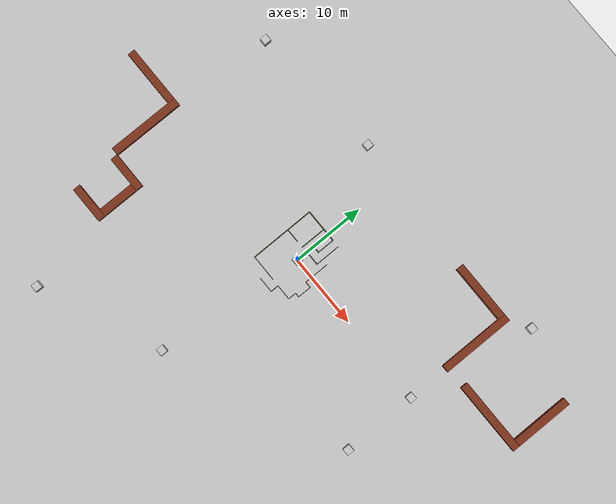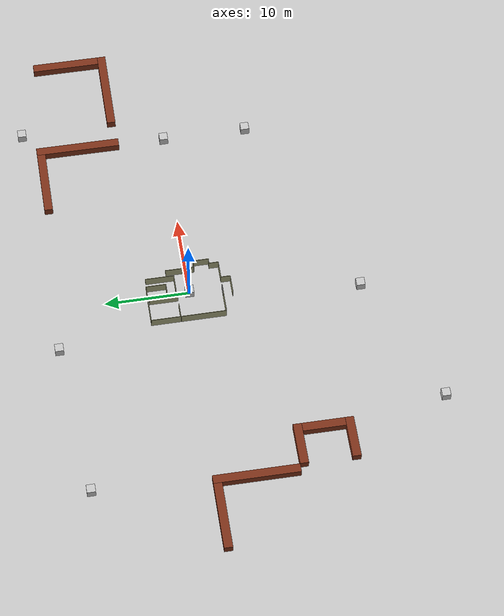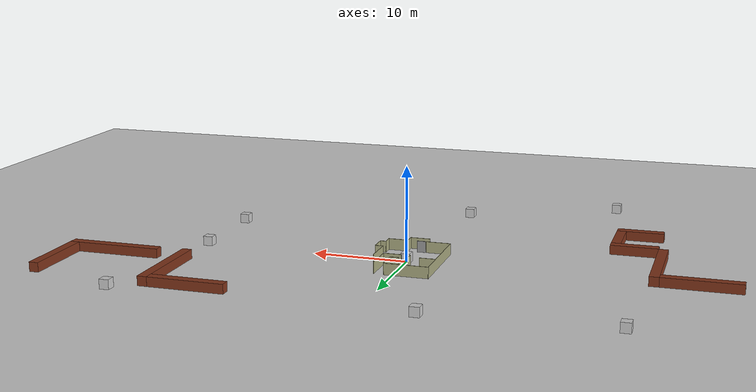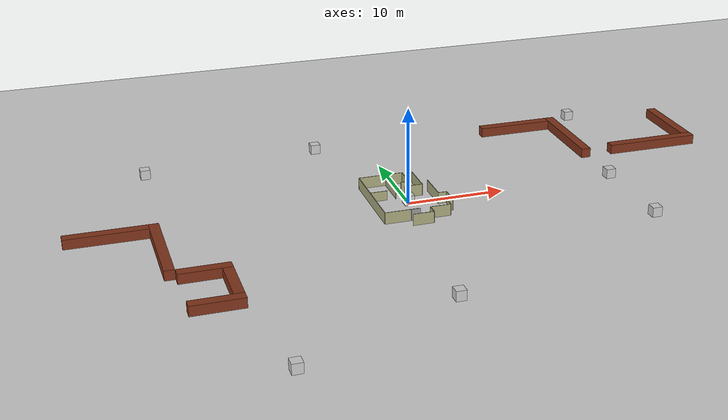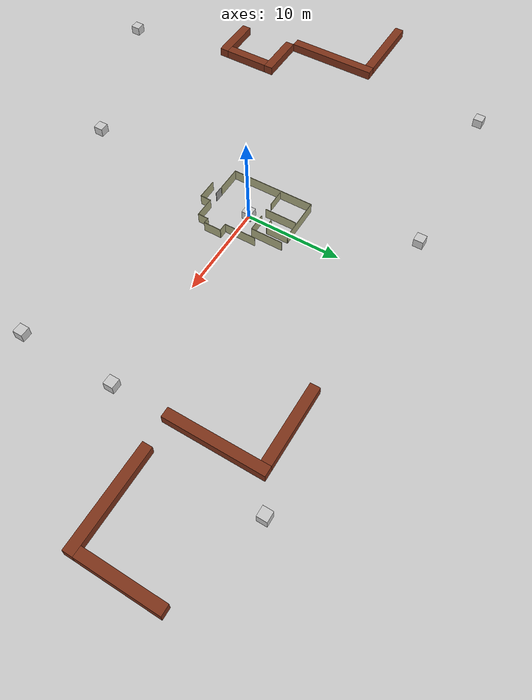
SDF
<?xml version="1.0" encoding="UTF-8"?>
<sdf version="1.4">
  <world name="default">
    <!-- *********************INITIAL POSE OF THE CAMERA***************************** -->
		<gui>
      <camera name="main_cam">
        <pose>1.15 -71.8 70 0 0.8 1.57</pose>
      </camera>
    </gui>

    <!-- *********************GROUND AND SUN***************************** -->
    <include>
      <uri>model://ground_plane</uri>
    </include>

    <include>
      <uri>model://sun</uri>
    </include>

    <!-- **********************WALLS**************************** -->
    <include>
      <uri>model://walls</uri>
      <name>limits</name>
      <pose>0 0 0 0 0 0</pose>
    </include>

    <!-- **********************PLATFORM**************************** -->
    <include>
      <uri>model://platform</uri>
      <name>platform</name>
      <pose>28 12 0 0 0 0</pose>
    </include>

    <!-- **********************L AND U OBSTACLES**************************** -->
    <include>
      <uri>model://L_box</uri>
      <name>obs_1</name>
      <pose>-25 -4 0 0 0 3.14</pose>
    </include>

    <include>
      <uri>model://U_box</uri>
      <name>obs_2</name>
      <pose>-22 -15.5 0 0 0 1.57</pose>
    </include>

    <include>
      <uri>model://L_box</uri>
      <name>obs_3</name>
      <pose>22 10.5 0 0 0 3.14</pose>
    </include>

    <include>
      <uri>model://L_box</uri>
      <name>obs_4</name>
      <pose>30 6 0 0 0 1.57</pose>
    </include>

    <!-- **********************BASIC OBSTACLES**************************** -->
    <include>
      <uri>model://basic_box</uri>
      <name>obs_5</name>
      <pose>-24 14.6 0 0 0 1.57</pose>
    </include>

    <include>
      <uri>model://basic_box</uri>
      <name>obs_6</name>
      <pose>-18 -27 0 0 0 1.57</pose>
    </include>

    <include>
      <uri>model://basic_box</uri>
      <name>obs_7</name>
      <pose>-5.5 16 0 0 0 1.57</pose>
    </include>

    <include>
      <uri>model://basic_box</uri>
      <name>obs_8</name>
      <pose>-2 -20 0 0 0 1.57</pose>
    </include>

    <include>
      <uri>model://basic_box</uri>
      <name>obs_9</name>
      <pose>0 0 0 0 0 1.57</pose>
    </include>

    <include>
      <uri>model://basic_box</uri>
      <name>obs_10</name>
      <pose>22 -10 0 0 0 1.57</pose>
    </include>

    <include>
      <uri>model://basic_box</uri>
      <name>obs_11</name>
      <pose>22 0 0 0 0 1.57</pose>
    </include>

    <include>
      <uri>model://basic_box</uri>
      <name>obs_12</name>
      <pose>25 17 0 0 0 1.57</pose>
    </include>
  </world>
</sdf>

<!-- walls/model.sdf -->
<sdf version='1.6'>
  <model name='walls'>
    <pose frame=''>0.070483 0.106017 0 0 -0 0</pose>
    <link name='Door_4'>
      <collision name='Door_4_Collision'>
        <geometry>
          <box>
            <size>0.906 0.05 1.2</size>
          </box>
        </geometry>
        <pose frame=''>0 0 0.6 0 -0 0</pose>
      </collision>
      <visual name='Door_4_Visual'>
        <pose frame=''>0 0 0.6 0 -0 0</pose>
        <geometry>
          <box>
            <size>0.906 0.05 1.2</size>
          </box>
        </geometry>
        <material>
          <script>
            <uri>file://media/materials/scripts/gazebo.material</uri>
            <name>Gazebo/Grey</name>
          </script>
        </material>
      </visual>
      <pose frame=''>-0.514741 -3.87011 0 0 0 -0.000969</pose>
    </link>
    <link name='Wall_19'>
      <collision name='Wall_19_Collision'>
        <geometry>
          <box>
            <size>1.9 0.05 1</size>
          </box>
        </geometry>
        <pose frame=''>0 0 0.5 0 -0 0</pose>
      </collision>
      <visual name='Wall_19_Visual'>
        <pose frame=''>0 0 0.5 0 -0 0</pose>
        <geometry>
          <box>
            <size>1.9 0.05 1</size>
          </box>
        </geometry>
        <material>
          <script>
            <uri>file://media/materials/scripts/gazebo.material</uri>
            <name>Gazebo/Grey</name>
          </script>
          <ambient>0.666667 0.666667 0.498039 1</ambient>
        </material>
      </visual>
      <pose frame=''>-2.73248 1.48798 0 0 -0 0</pose>
    </link>
    <link name='Wall_21'>
      <collision name='Wall_21_Collision'>
        <geometry>
          <box>
            <size>2.15 0.05 1.2</size>
          </box>
        </geometry>
        <pose frame=''>0 0 0.6 0 -0 0</pose>
      </collision>
      <visual name='Wall_21_Visual'>
        <pose frame=''>0 0 0.6 0 -0 0</pose>
        <geometry>
          <box>
            <size>2.15 0.05 1.2</size>
          </box>
        </geometry>
        <material>
          <script>
            <uri>file://media/materials/scripts/gazebo.material</uri>
            <name>Gazebo/Grey</name>
          </script>
          <ambient>0.666667 0.666667 0.498039 1</ambient>
        </material>
      </visual>
      <pose frame=''>-0.092483 -4.98802 0 0 -0 0</pose>
    </link>
    <link name='Wall_22'>
      <collision name='Wall_22_Collision'>
        <geometry>
          <box>
            <size>1.15 0.05 1.2</size>
          </box>
        </geometry>
        <pose frame=''>0 0 0.6 0 -0 0</pose>
      </collision>
      <visual name='Wall_22_Visual'>
        <pose frame=''>0 0 0.6 0 -0 0</pose>
        <geometry>
          <box>
            <size>1.15 0.05 1.2</size>
          </box>
        </geometry>
        <material>
          <script>
            <uri>file://media/materials/scripts/gazebo.material</uri>
            <name>Gazebo/Grey</name>
          </script>
          <ambient>0.666667 0.666667 0.498039 1</ambient>
        </material>
      </visual>
      <pose frame=''>0.957517 -4.43802 0 0 -0 1.5708</pose>
    </link>
    <link name='Wall_23'>
      <collision name='Wall_23_Collision'>
        <geometry>
          <box>
            <size>2.15 0.05 1.2</size>
          </box>
        </geometry>
        <pose frame=''>0 0 0.6 0 -0 0</pose>
      </collision>
      <visual name='Wall_23_Visual'>
        <pose frame=''>0 0 0.6 0 -0 0</pose>
        <geometry>
          <box>
            <size>2.15 0.05 1.2</size>
          </box>
        </geometry>
        <material>
          <script>
            <uri>file://media/materials/scripts/gazebo.material</uri>
            <name>Gazebo/Grey</name>
          </script>
          <ambient>0.666667 0.666667 0.498039 1</ambient>
        </material>
      </visual>
      <pose frame=''>2.00752 -3.88802 0 0 -0 0</pose>
    </link>
    <link name='Wall_24'>
      <collision name='Wall_24_Collision'>
        <geometry>
          <box>
            <size>1.15 0.05 1.2</size>
          </box>
        </geometry>
        <pose frame=''>0 0 0.6 0 -0 0</pose>
      </collision>
      <visual name='Wall_24_Visual'>
        <pose frame=''>0 0 0.6 0 -0 0</pose>
        <geometry>
          <box>
            <size>1.15 0.05 1.2</size>
          </box>
        </geometry>
        <material>
          <script>
            <uri>file://media/materials/scripts/gazebo.material</uri>
            <name>Gazebo/Grey</name>
          </script>
          <ambient>0.666667 0.666667 0.498039 1</ambient>
        </material>
      </visual>
      <pose frame=''>3.05752 -3.33802 0 0 -0 1.5708</pose>
    </link>
    <link name='Wall_25'>
      <collision name='Wall_25_Collision'>
        <geometry>
          <box>
            <size>0.65 0.05 1.2</size>
          </box>
        </geometry>
        <pose frame=''>0 0 0.6 0 -0 0</pose>
      </collision>
      <visual name='Wall_25_Visual'>
        <pose frame=''>0 0 0.6 0 -0 0</pose>
        <geometry>
          <box>
            <size>0.65 0.05 1.2</size>
          </box>
        </geometry>
        <material>
          <script>
            <uri>file://media/materials/scripts/gazebo.material</uri>
            <name>Gazebo/Grey</name>
          </script>
          <ambient>0.666667 0.666667 0.498039 1</ambient>
        </material>
      </visual>
      <pose frame=''>3.35752 -2.78802 0 0 -0 0</pose>
    </link>
    <link name='Wall_26'>
      <collision name='Wall_26_Collision'>
        <geometry>
          <box>
            <size>1.9 0.05 1.2</size>
          </box>
        </geometry>
        <pose frame=''>0 0 0.6 0 -0 0</pose>
      </collision>
      <visual name='Wall_26_Visual'>
        <pose frame=''>0 0 0.6 0 -0 0</pose>
        <geometry>
          <box>
            <size>1.9 0.05 1.2</size>
          </box>
        </geometry>
        <material>
          <script>
            <uri>file://media/materials/scripts/gazebo.material</uri>
            <name>Gazebo/Grey</name>
          </script>
          <ambient>0.666667 0.666667 0.498039 1</ambient>
        </material>
      </visual>
      <pose frame=''>3.65752 -1.86302 0 0 -0 1.5708</pose>
    </link>
    <link name='Wall_27'>
      <collision name='Wall_27_Collision'>
        <geometry>
          <box>
            <size>0.9 0.05 1.2</size>
          </box>
        </geometry>
        <pose frame=''>0 0 0.6 0 -0 0</pose>
      </collision>
      <visual name='Wall_27_Visual'>
        <pose frame=''>0 0 0.6 0 -0 0</pose>
        <geometry>
          <box>
            <size>0.9 0.05 1.2</size>
          </box>
        </geometry>
        <material>
          <script>
            <uri>file://media/materials/scripts/gazebo.material</uri>
            <name>Gazebo/Grey</name>
          </script>
          <ambient>0.666667 0.666667 0.498039 1</ambient>
        </material>
      </visual>
      <pose frame=''>3.23252 -0.938017 0 0 -0 3.14159</pose>
    </link>
    <link name='Wall_36'>
      <collision name='Wall_36_Collision'>
        <geometry>
          <box>
            <size>1.9 0.05 1.2</size>
          </box>
        </geometry>
        <pose frame=''>0 0 0.6 0 -0 0</pose>
      </collision>
      <visual name='Wall_36_Visual'>
        <pose frame=''>0 0 0.6 0 -0 0</pose>
        <geometry>
          <box>
            <size>1.9 0.05 1.2</size>
          </box>
        </geometry>
        <material>
          <script>
            <uri>file://media/materials/scripts/gazebo.material</uri>
            <name>Gazebo/Grey</name>
          </script>
          <ambient>0.666667 0.666667 0.498039 1</ambient>
        </material>
      </visual>
      <pose frame=''>1.04652 1.55798 0 0 -0 0</pose>
    </link>
    <link name='Wall_48'>
      <collision name='Wall_48_Collision'>
        <geometry>
          <box>
            <size>8.90001 0.05 1.2</size>
          </box>
        </geometry>
        <pose frame=''>0 0 0.6 0 -0 0</pose>
      </collision>
      <visual name='Wall_48_Visual'>
        <pose frame=''>0 0 0.6 0 -0 0</pose>
        <geometry>
          <box>
            <size>8.90001 0.05 1.2</size>
          </box>
        </geometry>
        <material>
          <script>
            <uri>file://media/materials/scripts/gazebo.material</uri>
            <name>Gazebo/Grey</name>
          </script>
          <ambient>0.666667 0.666667 0.498039 1</ambient>
        </material>
      </visual>
      <pose frame=''>-3.65148 0.562983 0 0 -0 1.57215</pose>
    </link>
    <link name='Wall_49'>
      <collision name='Wall_49_Collision'>
        <geometry>
          <box>
            <size>4.65 0.05 1.2</size>
          </box>
        </geometry>
        <pose frame=''>0 0 0.6 0 -0 0</pose>
      </collision>
      <visual name='Wall_49_Visual'>
        <pose frame=''>0 0 0.6 0 -0 0</pose>
        <geometry>
          <box>
            <size>4.65 0.05 1.2</size>
          </box>
        </geometry>
        <material>
          <script>
            <uri>file://media/materials/scripts/gazebo.material</uri>
            <name>Gazebo/Grey</name>
          </script>
          <ambient>0.666667 0.666667 0.498039 1</ambient>
        </material>
      </visual>
      <pose frame=''>-1.35748 4.98798 0 0 -0 0</pose>
    </link>
    <link name='Wall_50'>
      <collision name='Wall_50_Collision'>
        <geometry>
          <box>
            <size>2.4 0.05 1.2</size>
          </box>
        </geometry>
        <pose frame=''>0 0 0.6 0 -0 0</pose>
      </collision>
      <visual name='Wall_50_Visual'>
        <pose frame=''>0 0 0.6 0 -0 0</pose>
        <geometry>
          <box>
            <size>2.4 0.05 1.2</size>
          </box>
        </geometry>
        <material>
          <script>
            <uri>file://media/materials/scripts/gazebo.material</uri>
            <name>Gazebo/Grey</name>
          </script>
          <ambient>0.666667 0.666667 0.498039 1</ambient>
        </material>
      </visual>
      <pose frame=''>0.942517 3.81298 0 0 0 -1.5708</pose>
    </link>
    <link name='Wall_51'>
      <collision name='Wall_51_Collision'>
        <geometry>
          <box>
            <size>0.9 0.05 1.2</size>
          </box>
        </geometry>
        <pose frame=''>0 0 0.6 0 -0 0</pose>
      </collision>
      <visual name='Wall_51_Visual'>
        <pose frame=''>0 0 0.6 0 -0 0</pose>
        <geometry>
          <box>
            <size>0.9 0.05 1.2</size>
          </box>
        </geometry>
        <material>
          <script>
            <uri>file://media/materials/scripts/gazebo.material</uri>
            <name>Gazebo/Grey</name>
          </script>
          <ambient>0.666667 0.666667 0.498039 1</ambient>
        </material>
      </visual>
      <pose frame=''>0.517517 2.63798 0 0 -0 3.14159</pose>
    </link>
    <link name='Wall_53'>
      <collision name='Wall_53_Collision'>
        <geometry>
          <box>
            <size>3.4 0.05 1.2</size>
          </box>
        </geometry>
        <pose frame=''>0 0 0.6 0 -0 0</pose>
      </collision>
      <visual name='Wall_53_Visual'>
        <pose frame=''>0 0 0.6 0 -0 0</pose>
        <geometry>
          <box>
            <size>3.4 0.05 1.2</size>
          </box>
        </geometry>
        <material>
          <script>
            <uri>file://media/materials/scripts/gazebo.material</uri>
            <name>Gazebo/Grey</name>
          </script>
          <ambient>0.666667 0.666667 0.498039 1</ambient>
        </material>
      </visual>
      <pose frame=''>-0.835483 3.14198 0 0 -0 1.5708</pose>
    </link>
    <link name='Wall_58'>
      <collision name='Wall_58_Collision'>
        <geometry>
          <box>
            <size>3.4 0.05 1.2</size>
          </box>
        </geometry>
        <pose frame=''>0 0 0.6 0 -0 0</pose>
      </collision>
      <visual name='Wall_58_Visual'>
        <pose frame=''>0 0 0.6 0 -0 0</pose>
        <geometry>
          <box>
            <size>3.4 0.05 1.2</size>
          </box>
        </geometry>
        <material>
          <script>
            <uri>file://media/materials/scripts/gazebo.material</uri>
            <name>Gazebo/Grey</name>
          </script>
          <ambient>0.666667 0.666667 0.498039 1</ambient>
        </material>
      </visual>
      <pose frame=''>1.97152 3.23298 0 0 -0 1.5708</pose>
    </link>
    <link name='Wall_61'>
      <collision name='Wall_61_Collision'>
        <geometry>
          <box>
            <size>2.65 0.05 1.2</size>
          </box>
        </geometry>
        <pose frame=''>0 0 0.6 0 -0 0</pose>
      </collision>
      <visual name='Wall_61_Visual'>
        <pose frame=''>0 0 0.6 0 -0 0</pose>
        <geometry>
          <box>
            <size>2.65 0.05 1.2</size>
          </box>
        </geometry>
        <material>
          <script>
            <uri>file://media/materials/scripts/gazebo.material</uri>
            <name>Gazebo/Grey</name>
          </script>
          <ambient>0.666667 0.666667 0.498039 1</ambient>
        </material>
      </visual>
      <pose frame=''>-2.34548 -3.86202 0 0 -0 0</pose>
    </link>
    <link name='Wall_63'>
      <collision name='Wall_63_Collision'>
        <geometry>
          <box>
            <size>3.4 0.05 1.2</size>
          </box>
        </geometry>
        <pose frame=''>0 0 0.6 0 -0 0</pose>
      </collision>
      <visual name='Wall_63_Visual'>
        <pose frame=''>0 0 0.6 0 -0 0</pose>
        <geometry>
          <box>
            <size>3.4 0.05 1.2</size>
          </box>
        </geometry>
        <material>
          <script>
            <uri>file://media/materials/scripts/gazebo.material</uri>
            <name>Gazebo/Grey</name>
          </script>
          <ambient>0.666667 0.666667 0.498039 1</ambient>
        </material>
      </visual>
      <pose frame=''>2.80752 0.736983 0 0 -0 1.5708</pose>
    </link>
    <static>1</static>
  </model>
</sdf>

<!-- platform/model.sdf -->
<sdf version="1.6">
  <model name="platform">
    <static>false</static>
    <link name="dummy_upper"/>

    <joint name="world_joint" type="fixed">
      <parent>world</parent>
      <child>dummy_upper</child>
    </joint>
  </model>
</sdf>

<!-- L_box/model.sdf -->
<sdf version="1.4">
  <model name="L_box">
    <static>true</static>
    <link name="box">
      <!-- **********************PART1*************************** -->

      <visual name="visual_box_1">
        <pose>0 0 0.5 0 0 0</pose>
        <geometry>
          <box>
            <size>1 10 1</size>
          </box>
        </geometry>

        <material>
          <ambient>0.5 0.2 0.1 1</ambient>
        </material>
      </visual>
      <collision name="collision_box_1">
        <pose>0 0 0.5 0 0 0</pose>
        <geometry>
          <box>
            <size>1 10 1</size>
          </box>
        </geometry>
      </collision>

      <!-- **********************PART2*************************** -->
      <visual name="visual_box_2">
        <pose>4.5 -4.5 0.5 0 0 0</pose>
        <geometry>
          <box>
            <size>8 1 1</size>
          </box>
        </geometry>

        <material>
          <ambient>0.5 0.2 0.1 1</ambient>
        </material>
      </visual>
      <collision name="collision_box_2">
        <pose>4.5 -4.5 0.5 0 0 0</pose>
        <geometry>
          <box>
            <size>8 1 1</size>
          </box>
        </geometry>
      </collision>
    </link>
  </model>
</sdf>

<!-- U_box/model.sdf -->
<sdf version="1.4">
  <model name="u_box">
    <static>true</static>
    <link name="u_box">
      <!-- **********************PART1*************************** -->
      <visual name="visual_box">
        <pose>0 0 0.5 0 0 0</pose>
        <geometry>
          <box>
            <size>1 5 1</size>
          </box>
        </geometry>

        <material>
          <ambient>0.5 0.2 0.1 1</ambient>
        </material>
      </visual>
      <collision name="collision_box">
        <pose>0 0 0.5 0 0 0</pose>
        <geometry>
          <box>
            <size>1 5 1</size>
          </box>
        </geometry>
      </collision>

      <!-- **********************PART2*************************** -->
      <visual name="visual_box_2">
        <pose>3 -2 0.5 0 0 0</pose>
        <geometry>
          <box>
            <size>5 1 1</size>
          </box>
        </geometry>

        <material>
          <ambient>0.5 0.2 0.1 1</ambient>
        </material>
      </visual>
      <collision name="collision_box_2">
        <pose>3 -2.5 0.5 0 0 0</pose>
        <geometry>
          <box>
            <size>5 1 1</size>
          </box>
        </geometry>
      </collision>

      <!-- **********************PART3*************************** -->
      <visual name="visual_box_3">
        <pose>6 0 0.5 0 0 0</pose>
        <geometry>
          <box>
            <size>1 5 1</size>
          </box>
        </geometry>

        <material>
          <ambient>0.5 0.2 0.1 1</ambient>
        </material>
      </visual>
      <collision name="collision_box_3">
        <pose>6 0 0.5 0 0 0</pose>
        <geometry>
          <box>
            <size>1 5 1</size>
          </box>
        </geometry>
      </collision>
    </link>
  </model>
</sdf>

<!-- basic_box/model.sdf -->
<sdf version="1.7">
<model name="basic_box" canonical_link="node0_link">
  <link name="node0_link">
    <collision name="node0_collision">
      <pose relative_to="node0_link">0.00000 0.00000 0.00000 0.00000 0.00000 0.00000</pose>
      <geometry>
        <mesh>
          <uri>meshes/Body.dae</uri>
          <scale>1.00000 1.00000 1.00000</scale>
        </mesh>
      </geometry>
      <surface>
        <contact><ode>  <max_vel>0.001</max_vel><min_depth>0.01</min_depth><kd>1e15</kd>  </ode></contact>
      </surface>
    </collision>
    <inertial>
      <inertia>
        <ixx>10.00000</ixx>
        <ixy>0.00000</ixy>
        <ixz>0.00000</ixz>
        <iyy>10.00000</iyy>
        <iyz>0.00000</iyz>
        <izz>10.00000</izz>
      </inertia>
      <pose relative_to="node0_link">0.00000 0.00000 0.50000 0.00000 0.00000 0.00000</pose>
      <mass>60.00000</mass>
    </inertial>
    <visual name="node0">
      <material>
        <diffuse>0.80000 0.80000 0.80000 1.00000</diffuse>
        <specular>0.40000 0.40000 0.40000 0.49804</specular>
        <emissive>0.00000 0.00000 0.00000 1.00000</emissive>
      </material>
      <pose relative_to="node0_link">0.00000 0.00000 0.00000 0.00000 0.00000 0.00000</pose>
      <geometry>
        <mesh>
          <uri>meshes/Body.dae</uri>
          <scale>1.00000 1.00000 1.00000</scale>
        </mesh>
      </geometry>
    </visual>
  </link>
</model>
</sdf>
